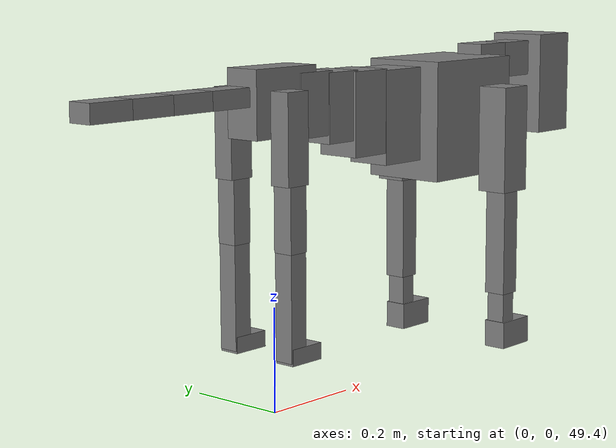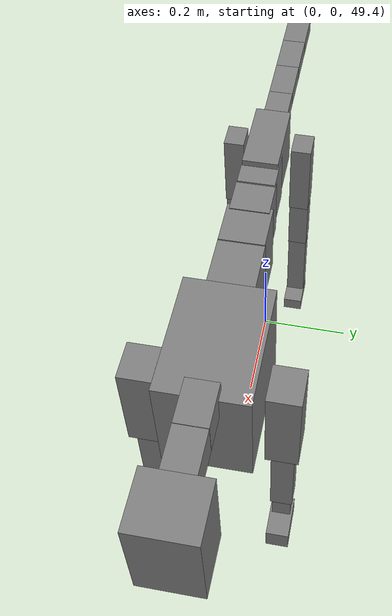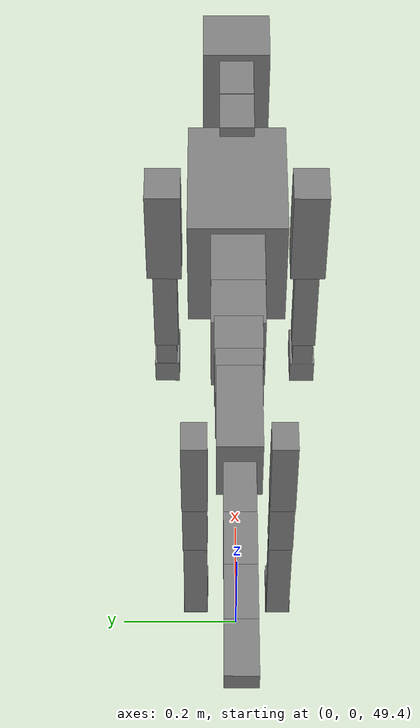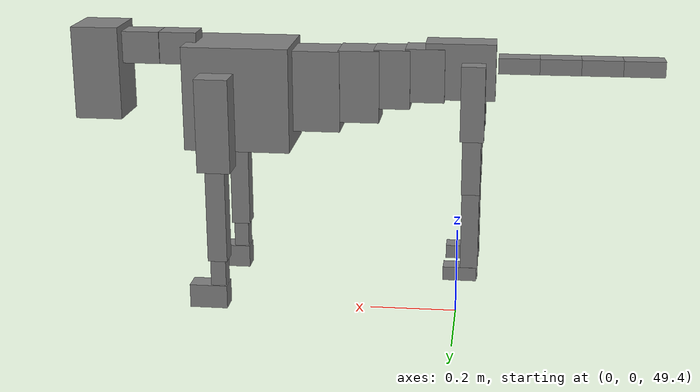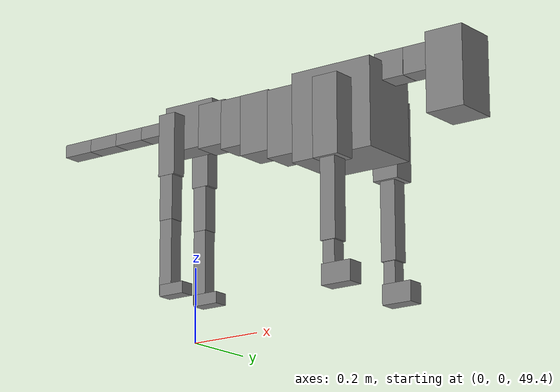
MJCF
<mujoco model="dog">

    <default>
        <joint armature="0.02" stiffness="1" damping="0.2" limited="true"/>
        <geom condim="3" friction="1 0.05 0.05" margin="0.01"/>
        <motor ctrllimited="true" ctrlrange="-1.0 1.0" forcelimited="true" gear="50"/>
    </default>

    <compiler inertiafromgeom="true" angle="radian"/>

    <option timestep="0.016" iterations="50" tolerance="1e-10" solver="Newton" jacobian="dense" cone="pyramidal"/>

    <size nconmax="20000" njmax="60000" nstack="5000000"/>
    <visual>
        <map force="0.1" zfar="30"/>
        <rgba haze="0.15 0.25 0.35 1"/>
        <quality shadowsize="2048"/>
        <global offwidth="800" offheight="800"/>
    </visual>

    <asset>
        <texture type="skybox" builtin="gradient" rgb1="0.3 0.5 0.7" rgb2="0 0 0" width="512" height="512"/>
        <texture name="texplane" type="2d" builtin="checker" rgb1=".2 .3 .4" rgb2=".1 0.15 0.2" width="512" height="512"
                 mark="cross" markrgb=".8 .8 .8"/>
        <texture name="texgeom" type="cube" builtin="flat" mark="cross" width="127" height="1278" rgb1="0.8 0.6 0.4"
                 rgb2="0.8 0.6 0.4" markrgb="1 1 1" random="0.01"/>

        <material name="matplane" reflectance="0.3" texture="texplane" texrepeat="1 1" texuniform="true"/>
        <material name="matgeom" texture="texgeom" texuniform="true" rgba="0.8 0.6 .4 1"/>
    </asset>

    <worldbody>
        <geom name="floor" pos="0 0 0" size="0 0 .25" type="plane" material="matplane" condim="3"/>

        <light directional="false" diffuse=".2 .2 .2" specular="0 0 0" pos="0 0 5" dir="0 0 -1" castshadow="false"/>
        <light mode="targetbodycom" target="torso" directional="false" diffuse=".8 .8 .8" specular="0.3 0.3 0.3"
               pos="0 0 4.0" dir="0 0 -1"/>

        <body name="root" pos="0 0 50">
            <freejoint name="root_1"/>
            <geom type="box" pos="0 0 -0.02" size="0.0774  0.0358  0.063" density="2030"/>

            <body name="spine1" pos="0.054 0 0">
                <joint name="spine1_y" axis="0 1 0" range="0 0.7" limited="true"/>
                <geom type="box" pos="0.02375 0 -0.03" size="0.04375  0.0375  0.05985" density="2030"/>

                <body name="spine2" pos="0.0612 0 0">
                    <joint name="spine2_y" axis="0 1 0" range="-0.15 0.15" limited="true"/>
                    <geom type="box" pos="0.03555  0  -0.04" size="0.04055  0.039  0.06615" density="2030"/>

                    <body name="spine3" pos="0.0730 0 0">
                        <joint name="spine3_y" axis="0 1 0" range="-0.15 0.15" limited="true"/>
                        <geom type="box" pos="0.03555  0  -0.057" size="0.04555  0.0445  0.081" density="2030"/>

                        <body name="spine4" pos="0.0780 0 0">
                            <joint name="spine4_y" axis="0 1 0" range="-0.15 0.15" limited="true"/>
                            <geom type="box" pos="0.05265  0  -0.07" size="0.05265  0.045  0.09135" density="2030"/>

                            <body name="torso" pos="0.1082 0 0">
                                <joint name="torso_y" axis="0 1 0" range="-0.15 0.15" limited="true"/>
                                <geom type="box" pos="0.11925  0  -0.085" size="0.11925  0.085  0.11745"
                                      density="2030"/>

                                <body name="neck1" pos="0.2160  0   0.0180">
                                    <joint name="neck1_y" axis="0 1 0" range="-1.2  -1" limited="true"/>
                                    <geom type="box" pos="0.0423  0  0" size="0.0423  0.03  0.036" density="2325"/>

                                    <body name="neck2" pos="0.0853  0  0">
                                        <joint name="neck2_y" axis="0 1 0" range="0.1  0" limited="true"/>
                                        <geom type="box" pos="0.0423  0  0" size="0.0423  0.03  0.036" density="2325"/>

                                        <body name="head" pos="0.0853  0  0">
                                            <joint name="head_y" axis="0 1 0" range="-0.3  -0.2" limited="true"/>
                                            <geom type="box" pos="0.0531  0  -0.055" size="0.0531  0.06  0.1044"
                                                  density="4030"/>

                                        </body>
                                    </body>
                                </body>

                                <body name="front_shoulder" pos="0.156  0   -0.0480">
                                    <joint name="front_shoulder_y" axis="0 1 0" range="-1 1.5" limited="true"/>
                                    <geom type="box" pos="0 0.13 -0.0782" size="0.0370  0.0316  0.1049" density="1158"/>
                                    <geom type="box" pos="0 -0.13 -0.0782" size="0.0370  0.0316  0.1049"
                                          density="1158"/>

                                    <body name="front_elbow" pos="0  0  -0.1565">
                                        <joint name="front_elbow_y" axis="0 1 0" range="-2 0" limited="true"/>
                                        <geom type="box" pos="0 0.13 -0.1181" size="0.0218  0.0223  0.1181"
                                              density="1081"/>
                                        <geom type="box" pos="0 -0.13 -0.1181" size="0.0218  0.0223  0.1181"
                                              density="1081"/>

                                        <body name="front_wrist" pos="0  0  -0.2363">
                                            <joint name="front_wrist_y" axis="0 1 0" range="-0.2 0" limited="true"/>
                                            <geom type="box" pos="0 0.13 -0.0367" size="0.0171  0.0190  0.0498"
                                                  density="1664"/>
                                            <geom type="box" pos="0 -0.13 -0.0367" size="0.0171  0.0190  0.0498"
                                                  density="1664"/>

                                            <body name="front_finger_end" pos="0  0  -0.0734">
                                                <joint name="front_finger_y" axis="0 1 0" range="-0.4 1"
                                                       limited="true"/>
                                                <geom type="box" pos="0.0232  0.13  -0.0118"
                                                      size="0.0425  0.0232  0.0268" density="1515"/>
                                                <geom type="box" pos="0.0232  -0.13  -0.0118"
                                                      size="0.0425  0.0232  0.0268" density="1515"/>

                                            </body>

                                        </body>
                                    </body>
                                </body>

                            </body>
                        </body>
                    </body>
                </body>
            </body>

            <body name="back_hip" pos="-0.03 0 -0.018">
                <joint name="back_hip_y" axis="0 1 0" range="-1.5 0.3" limited="true"/>
                <geom type="box" pos="0 0.07 -0.0610" size="0.0262  0.0206  0.0838" density="1154"/>
                <geom type="box" pos="0 -0.07 -0.0610" size="0.0262  0.0206  0.0838" density="1154"/>

                <body name="back_knee" pos="0  0  -0.1219">
                    <joint name="back_knee_y" axis="0 1 0" range="0 2.8" limited="true"/>
                    <geom type="box" pos="0 0.07 -0.0640" size="0.0204  0.0201  0.0796" density="1227"/>
                    <geom type="box" pos="0 -0.07 -0.0640" size="0.0204  0.0201  0.0796" density="1227"/>

                    <body name="back_ankle" pos="0  0  -0.1280">
                        <joint name="back_ankle_y" axis="0 1 0" range="-2.2 0" limited="true"/>
                        <geom type="box" pos="0 0.07 -0.1013" size="0.0193  0.0193  0.1126" density="1284"/>
                        <geom type="box" pos="0 -0.07 -0.1013" size="0.0193  0.0193  0.1126" density="1284"/>

                        <body name="back_toe_end" pos="0  0  -0.2026">
                            <joint name="back_toe_y" axis="0 1 0" range="-0.4 1" limited="true"/>
                            <geom type="box" pos="0.0203  0.07  -0.0005" size="0.0372  0.0203  0.0155" density="1515"/>
                            <geom type="box" pos="0.0203  -0.07  -0.0005" size="0.0372  0.0203  0.0155" density="1515"/>

                        </body>
                    </body>
                </body>
            </body>

            <body name="tail1" pos="-0.074 0 -0.006">
                <joint name="tail1_y" axis="0 1 0" range="-0.2 0.2" limited="true"/>
                <geom type="box" pos="-0.0536  0  0" size="0.045  0.025  0.0175" density="1587"/>

                <body name="tail2" pos="-0.09 0 0">
                    <joint name="tail2_y" axis="0 1 0" range="-0.2 0.2" limited="true"/>
                    <geom type="box" pos="-0.0536  0  0" size="0.045  0.025  0.0175" density="1587"/>

                    <body name="tail3" pos="-0.09 0 0">
                        <joint name="tail3_y" axis="0 1 0" range="-0.2 0.2" limited="true"/>
                        <geom type="box" pos="-0.0536  0  0" size="0.045  0.025  0.0175" density="1587"/>

                        <body name="tail4" pos="-0.09 0 0">
                            <joint name="tail4_y" axis="0 1 0" range="-0.2 0.2" limited="true"/>
                            <geom type="box" pos="-0.0536  0  0" size="0.045  0.025  0.0175" density="1587"/>

                        </body>
                    </body>
                </body>
            </body>
        </body>
    </worldbody>

    <actuator>
        <motor joint="spine1_y" forcerange="-150 150     "/>
        <motor joint="spine2_y" forcerange="-150 150     "/>
        <motor joint="spine3_y" forcerange="-150 150     "/>
        <motor joint="spine4_y" forcerange="-150 150     "/>
        <motor joint="torso_y" forcerange="-150 150     "/>
        <motor joint="neck1_y" forcerange="-100 100       "/>
        <motor joint="neck2_y" forcerange="-100 100       "/>
        <motor joint="head_y" forcerange="-150 150       "/>
        <motor joint="front_shoulder_y" forcerange="-122.62 188.01"/>
        <motor joint="front_elbow_y" forcerange="-139.79 122.58"/>
        <motor joint="front_wrist_y" forcerange="-58.42 93.35"/>
        <motor joint="front_finger_y" forcerange="-20.71 63.01"/>
        <motor joint="back_hip_y" forcerange="-217.54 256.78"/>
        <motor joint="back_knee_y" forcerange="-223.29 269.77"/>
        <motor joint="back_angle_y" forcerange="-50.80 157.57"/>
        <motor joint="back_toe_y" forcerange="-57.58 24.53"/>
        <motor joint="tail1_y" forcerange="-50 50     "/>
        <motor joint="tail2_y" forcerange="-50 50     "/>
        <motor joint="tail3_y" forcerange="-50 50     "/>
        <motor joint="tail4_y" forcerange="-50 50     "/>
    </actuator>
</mujoco>
